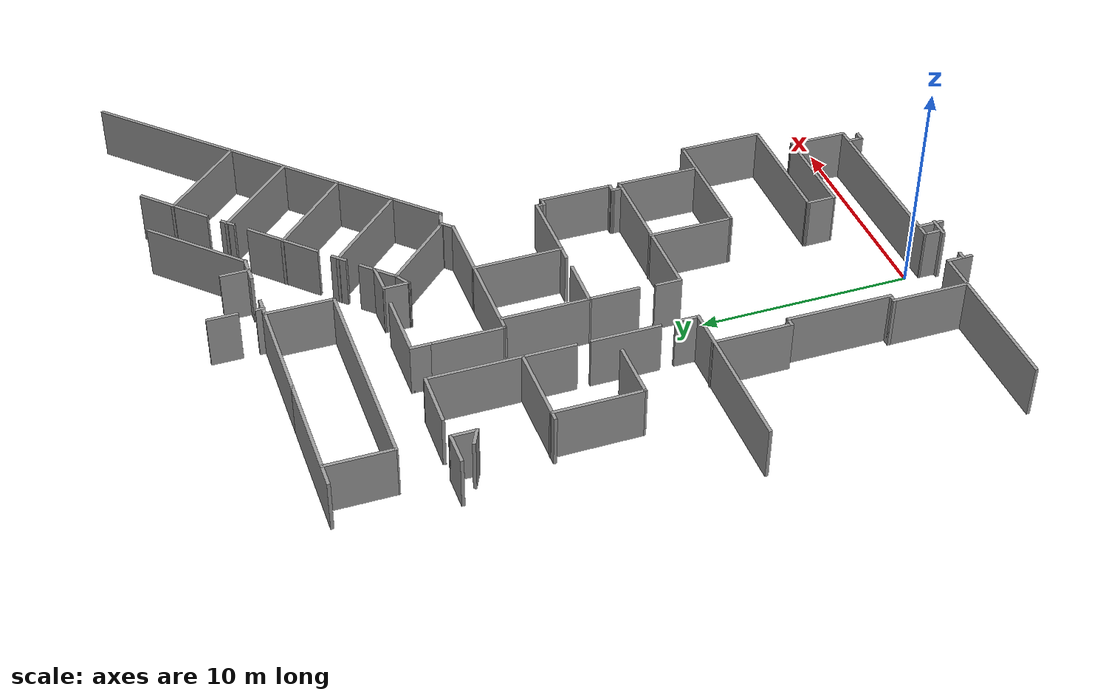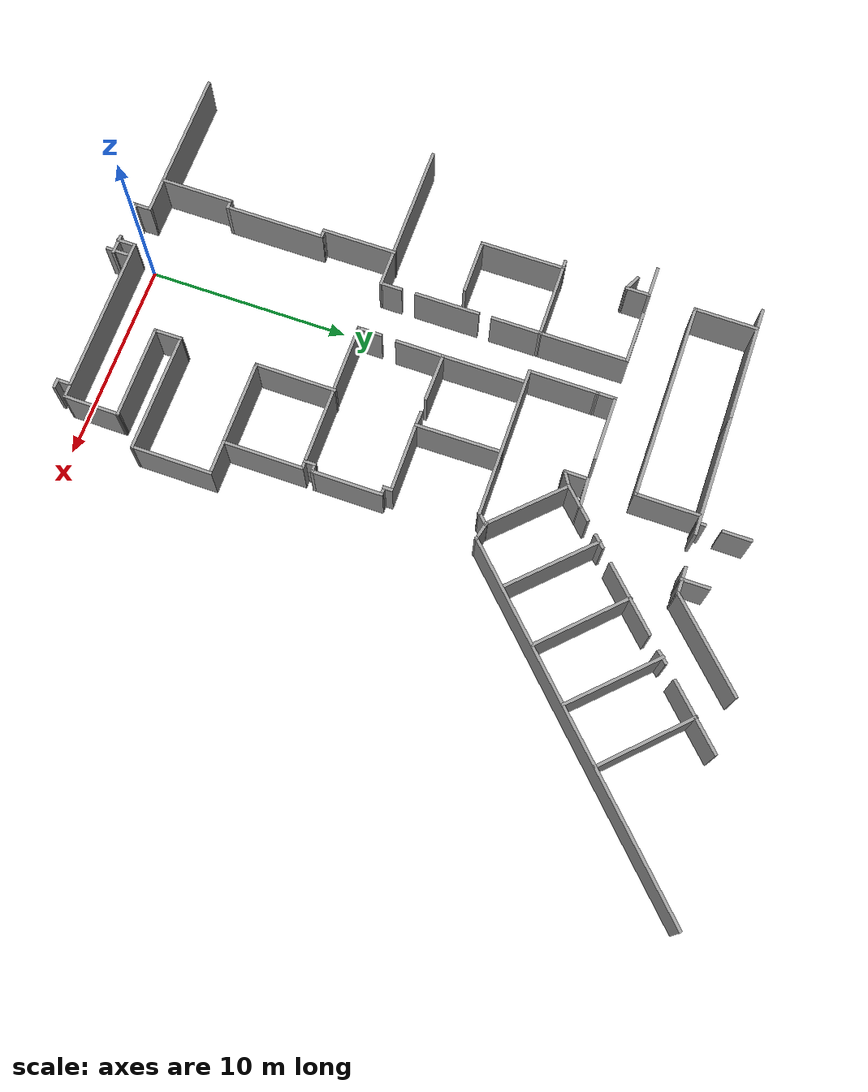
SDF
<sdf version="1.7">
 <model name="TI_1">
  <pose>-0.810812 4.85868 0 0 -0 0</pose>
  <link name="Wall_112">
   <collision name="Wall_112_Collision">
    <geometry><box><size>6 0.15 2.5</size></box></geometry>
    <pose>0 0 1.25 0 -0 0</pose>
   </collision>
   <visual name="Wall_112_Visual">
    <pose>0 0 1.25 0 -0 0</pose>
    <geometry><box><size>6 0.15 2.5</size></box></geometry>
    <material>
     <script><uri>file://media/materials/scripts/gazebo.material</uri><name>Gazebo/Grey</name></script>
     <ambient>1 1 1 1</ambient>
    </material>
    <meta><layer>0</layer></meta>
   </visual>
   <pose>-2.93233 23.8539 0 0 -0 3.14159</pose>
  </link>
  <link name="Wall_114">
   <collision name="Wall_114_Collision">
    <geometry><box><size>6 0.15 2.5</size></box></geometry>
    <pose>0 0 1.25 0 -0 0</pose>
   </collision>
   <visual name="Wall_114_Visual">
    <pose>0 0 1.25 0 -0 0</pose>
    <geometry><box><size>6 0.15 2.5</size></box></geometry>
    <material>
     <script><uri>file://media/materials/scripts/gazebo.material</uri><name>Gazebo/Grey</name></script>
     <ambient>1 1 1 1</ambient>
    </material>
    <meta><layer>0</layer></meta>
   </visual>
   <pose>2.91767 23.8539 0 0 -0 0</pose>
  </link>
  <link name="Wall_116">
   <collision name="Wall_116_Collision">
    <geometry><box><size>0.440225 0.15 2.5</size></box></geometry>
    <pose>0 0 1.25 0 -0 0</pose>
   </collision>
   <visual name="Wall_116_Visual">
    <pose>0 0 1.25 0 -0 0</pose>
    <geometry><box><size>0.440225 0.15 2.5</size></box></geometry>
    <material>
     <script><uri>file://media/materials/scripts/gazebo.material</uri><name>Gazebo/Grey</name></script>
     <ambient>1 1 1 1</ambient>
    </material>
    <meta><layer>0</layer></meta>
   </visual>
   <pose>5.32121 23.9754 0 0 -0 -1.5708</pose>
  </link>
  <link name="Wall_118">
   <collision name="Wall_118_Collision">
    <geometry><box><size>3.149 0.15 2.5</size></box></geometry>
    <pose>0 0 1.25 0 -0 0</pose>
   </collision>
   <visual name="Wall_118_Visual">
    <pose>0 0 1.25 0 -0 0</pose>
    <geometry><box><size>3.149 0.15 2.5</size></box></geometry>
    <material>
     <script><uri>file://media/materials/scripts/gazebo.material</uri><name>Gazebo/Grey</name></script>
     <ambient>1 1 1 1</ambient>
    </material>
    <meta><layer>0</layer></meta>
   </visual>
   <pose>4.94604 22.297 0 0 -0 -1.57373</pose>
  </link>
  <link name="Wall_119">
   <collision name="Wall_119_Collision">
    <geometry><box><size>9.93855 0.15 2.5</size></box></geometry>
    <pose>0 0 1.25 0 -0 0</pose>
   </collision>
   <visual name="Wall_119_Visual">
    <pose>0 0 1.25 0 -0 0</pose>
    <geometry><box><size>9.93855 0.15 2.5</size></box></geometry>
    <material>
     <script><uri>file://media/materials/scripts/gazebo.material</uri><name>Gazebo/Grey</name></script>
     <ambient>1 1 1 1</ambient>
    </material>
    <meta><layer>0</layer></meta>
   </visual>
   <pose>0.013612 20.8144 0 0 -0 3.13814</pose>
  </link>
  <link name="Wall_120">
   <collision name="Wall_120_Collision">
    <geometry><box><size>3.1578 0.15 2.5</size></box></geometry>
    <pose>0 0 1.25 0 -0 0</pose>
   </collision>
   <visual name="Wall_120_Visual">
    <pose>0 0 1.25 0 -0 0</pose>
    <geometry><box><size>3.1578 0.15 2.5</size></box></geometry>
    <material>
     <script><uri>file://media/materials/scripts/gazebo.material</uri><name>Gazebo/Grey</name></script>
     <ambient>1 1 1 1</ambient>
    </material>
    <meta><layer>0</layer></meta>
   </visual>
   <pose>-4.87624 22.3352 0 0 -0 1.56787</pose>
  </link>
  <link name="Wall_139">
   <collision name="Wall_139_Collision">
    <geometry><box><size>1.42714 0.15 2.5</size></box></geometry>
    <pose>0 0 1.25 0 -0 0</pose>
   </collision>
   <visual name="Wall_139_Visual">
    <pose>0 0 1.25 0 -0 0</pose>
    <geometry><box><size>1.42714 0.15 2.5</size></box></geometry>
    <material>
     <script><uri>file://media/materials/scripts/gazebo.material</uri><name>Gazebo/Grey</name></script>
     <ambient>1 1 1 1</ambient>
    </material>
    <meta><layer>0</layer></meta>
   </visual>
   <pose>5.33734 25.6312 0 0 -0 -1.5708</pose>
  </link>
  <link name="Wall_141">
   <collision name="Wall_141_Collision">
    <geometry><box><size>5.25 0.15 2.5</size></box></geometry>
    <pose>0 0 1.25 0 -0 0</pose>
   </collision>
   <visual name="Wall_141_Visual">
    <pose>0 0 1.25 0 -0 0</pose>
    <geometry><box><size>5.25 0.15 2.5</size></box></geometry>
    <material>
     <script><uri>file://media/materials/scripts/gazebo.material</uri><name>Gazebo/Grey</name></script>
     <ambient>1 1 1 1</ambient>
    </material>
    <meta><layer>0</layer></meta>
   </visual>
   <pose>10.5716 25.6654 0 0 -0 -2.35619</pose>
  </link>
  <link name="Wall_142">
   <collision name="Wall_142_Collision">
    <geometry><box><size>1.38634 0.15 2.5</size></box></geometry>
    <pose>0 0 1.25 0 -0 0</pose>
   </collision>
   <visual name="Wall_142_Visual">
    <pose>0 0 1.25 0 -0 0</pose>
    <geometry><box><size>1.38634 0.15 2.5</size></box></geometry>
    <material>
     <script><uri>file://media/materials/scripts/gazebo.material</uri><name>Gazebo/Grey</name></script>
     <ambient>1 1 1 1</ambient>
    </material>
    <meta><layer>0</layer></meta>
   </visual>
   <pose>8.15035 23.8615 0 0 -0 -3.14039</pose>
  </link>
  <link name="Wall_144">
   <collision name="Wall_144_Collision">
    <geometry><box><size>1.41185 0.15 2.5</size></box></geometry>
    <pose>0 0 1.25 0 -0 0</pose>
   </collision>
   <visual name="Wall_144_Visual">
    <pose>0 0 1.25 0 -0 0</pose>
    <geometry><box><size>1.41185 0.15 2.5</size></box></geometry>
    <material>
     <script><uri>file://media/materials/scripts/gazebo.material</uri><name>Gazebo/Grey</name></script>
     <ambient>1 1 1 1</ambient>
    </material>
    <meta><layer>0</layer></meta>
   </visual>
   <pose>8.09428 24.4611 0 0 -0 -1.56474</pose>
  </link>
  <link name="Wall_216">
   <collision name="Wall_216_Collision">
    <geometry><box><size>18.75 0.15 2.5</size></box></geometry>
    <pose>0 0 1.25 0 -0 0</pose>
   </collision>
   <visual name="Wall_216_Visual">
    <pose>0 0 1.25 0 -0 0</pose>
    <geometry><box><size>18.75 0.15 2.5</size></box></geometry>
    <material>
     <script><uri>file://media/materials/scripts/gazebo.material</uri><name>Gazebo/Grey</name></script>
     <ambient>1 1 1 1</ambient>
    </material>
    <meta><layer>0</layer></meta>
   </visual>
   <pose>15.8821 21.2558 0 0 -0 -2.35619</pose>
  </link>
  <link name="Wall_233">
   <collision name="Wall_233_Collision">
    <geometry><box><size>3.65505 0.15 2.5</size></box></geometry>
    <pose>0 0 1.25 0 -0 0</pose>
   </collision>
   <visual name="Wall_233_Visual">
    <pose>0 0 1.25 0 -0 0</pose>
    <geometry><box><size>3.65505 0.15 2.5</size></box></geometry>
    <material>
     <script><uri>file://media/materials/scripts/gazebo.material</uri><name>Gazebo/Grey</name></script>
     <ambient>1 1 1 1</ambient>
    </material>
    <meta><layer>0</layer></meta>
   </visual>
   <pose>13.8063 26.0507 0 0 -0 -2.35381</pose>
  </link>
  <link name="Wall_235">
   <collision name="Wall_235_Collision">
    <geometry><box><size>5.03533 0.15 2.5</size></box></geometry>
    <pose>0 0 1.25 0 -0 0</pose>
   </collision>
   <visual name="Wall_235_Visual">
    <pose>0 0 1.25 0 -0 0</pose>
    <geometry><box><size>5.03533 0.15 2.5</size></box></geometry>
    <material>
     <script><uri>file://media/materials/scripts/gazebo.material</uri><name>Gazebo/Grey</name></script>
     <ambient>1 1 1 1</ambient>
    </material>
    <meta><layer>0</layer></meta>
   </visual>
   <pose>15.5217 24.3531 0 0 -0 -0.788823</pose>
  </link>
  <link name="Wall_237">
   <collision name="Wall_237_Collision">
    <geometry><box><size>0.719083 0.15 2.5</size></box></geometry>
    <pose>0 0 1.25 0 -0 0</pose>
   </collision>
   <visual name="Wall_237_Visual">
    <pose>0 0 1.25 0 -0 0</pose>
    <geometry><box><size>0.719083 0.15 2.5</size></box></geometry>
    <material>
     <script><uri>file://media/materials/scripts/gazebo.material</uri><name>Gazebo/Grey</name></script>
     <ambient>1 1 1 1</ambient>
    </material>
    <meta><layer>0</layer></meta>
   </visual>
   <pose>11.7597 23.9981 0 0 -0 -2.32679</pose>
  </link>
  <link name="Wall_239">
   <collision name="Wall_239_Collision">
    <geometry><box><size>5.03542 0.15 2.5</size></box></geometry>
    <pose>0 0 1.25 0 -0 0</pose>
   </collision>
   <visual name="Wall_239_Visual">
    <pose>0 0 1.25 0 -0 0</pose>
    <geometry><box><size>5.03542 0.15 2.5</size></box></geometry>
    <material>
     <script><uri>file://media/materials/scripts/gazebo.material</uri><name>Gazebo/Grey</name></script>
     <ambient>1 1 1 1</ambient>
    </material>
    <meta><layer>0</layer></meta>
   </visual>
   <pose>13.4573 22.2887 0 0 -0 -0.792247</pose>
  </link>
  <link name="Wall_241">
   <collision name="Wall_241_Collision">
    <geometry><box><size>3.69687 0.15 2.5</size></box></geometry>
    <pose>0 0 1.25 0 -0 0</pose>
   </collision>
   <visual name="Wall_241_Visual">
    <pose>0 0 1.25 0 -0 0</pose>
    <geometry><box><size>3.69687 0.15 2.5</size></box></geometry>
    <material>
     <script><uri>file://media/materials/scripts/gazebo.material</uri><name>Gazebo/Grey</name></script>
     <ambient>1 1 1 1</ambient>
    </material>
    <meta><layer>0</layer></meta>
   </visual>
   <pose>9.70714 21.9338 0 0 -0 -2.35619</pose>
  </link>
  <link name="Wall_243">
   <collision name="Wall_243_Collision">
    <geometry><box><size>5.01022 0.15 2.5</size></box></geometry>
    <pose>0 0 1.25 0 -0 0</pose>
   </collision>
   <visual name="Wall_243_Visual">
    <pose>0 0 1.25 0 -0 0</pose>
    <geometry><box><size>5.01022 0.15 2.5</size></box></geometry>
    <material>
     <script><uri>file://media/materials/scripts/gazebo.material</uri><name>Gazebo/Grey</name></script>
     <ambient>1 1 1 1</ambient>
    </material>
    <meta><layer>0</layer></meta>
   </visual>
   <pose>11.3929 20.2184 0 0 -0 -0.783677</pose>
  </link>
  <link name="Wall_245">
   <collision name="Wall_245_Collision">
    <geometry><box><size>0.777449 0.15 2.5</size></box></geometry>
    <pose>0 0 1.25 0 -0 0</pose>
   </collision>
   <visual name="Wall_245_Visual">
    <pose>0 0 1.25 0 -0 0</pose>
    <geometry><box><size>0.777449 0.15 2.5</size></box></geometry>
    <material>
     <script><uri>file://media/materials/scripts/gazebo.material</uri><name>Gazebo/Grey</name></script>
     <ambient>1 1 1 1</ambient>
    </material>
    <meta><layer>0</layer></meta>
   </visual>
   <pose>7.63093 19.8871 0 0 -0 -2.34286</pose>
  </link>
  <link name="Wall_247">
   <collision name="Wall_247_Collision">
    <geometry><box><size>5.03533 0.15 2.5</size></box></geometry>
    <pose>0 0 1.25 0 -0 0</pose>
   </collision>
   <visual name="Wall_247_Visual">
    <pose>0 0 1.25 0 -0 0</pose>
    <geometry><box><size>5.03533 0.15 2.5</size></box></geometry>
    <material>
     <script><uri>file://media/materials/scripts/gazebo.material</uri><name>Gazebo/Grey</name></script>
     <ambient>1 1 1 1</ambient>
    </material>
    <meta><layer>0</layer></meta>
   </visual>
   <pose>9.34632 18.1777 0 0 -0 -0.788823</pose>
  </link>
  <link name="Wall_249">
   <collision name="Wall_249_Collision">
    <geometry><box><size>1.93881 0.15 2.5</size></box></geometry>
    <pose>0 0 1.25 0 -0 0</pose>
   </collision>
   <visual name="Wall_249_Visual">
    <pose>0 0 1.25 0 -0 0</pose>
    <geometry><box><size>1.93881 0.15 2.5</size></box></geometry>
    <material>
     <script><uri>file://media/materials/scripts/gazebo.material</uri><name>Gazebo/Grey</name></script>
     <ambient>1 1 1 1</ambient>
    </material>
    <meta><layer>0</layer></meta>
   </visual>
   <pose>6.20494 18.4653 0 0 -0 -2.35085</pose>
  </link>
  <link name="Wall_250">
   <collision name="Wall_250_Collision">
    <geometry><box><size>4.31119 0.15 2.5</size></box></geometry>
    <pose>0 0 1.25 0 -0 0</pose>
   </collision>
   <visual name="Wall_250_Visual">
    <pose>0 0 1.25 0 -0 0</pose>
    <geometry><box><size>4.31119 0.15 2.5</size></box></geometry>
    <material>
     <script><uri>file://media/materials/scripts/gazebo.material</uri><name>Gazebo/Grey</name></script>
     <ambient>1 1 1 1</ambient>
    </material>
    <meta><layer>0</layer></meta>
   </visual>
   <pose>7.03691 16.3482 0 0 -0 -0.792295</pose>
  </link>
  <link name="Wall_251">
   <collision name="Wall_251_Collision">
    <geometry><box><size>0.99666 0.15 2.5</size></box></geometry>
    <pose>0 0 1.25 0 -0 0</pose>
   </collision>
   <visual name="Wall_251_Visual">
    <pose>0 0 1.25 0 -0 0</pose>
    <geometry><box><size>0.99666 0.15 2.5</size></box></geometry>
    <material>
     <script><uri>file://media/materials/scripts/gazebo.material</uri><name>Gazebo/Grey</name></script>
     <ambient>1 1 1 1</ambient>
    </material>
    <meta><layer>0</layer></meta>
   </visual>
   <pose>8.91054 14.7722 0 0 -0 -0.225601</pose>
  </link>
  <link name="Wall_253">
   <collision name="Wall_253_Collision">
    <geometry><box><size>1.53127 0.15 2.5</size></box></geometry>
    <pose>0 0 1.25 0 -0 0</pose>
   </collision>
   <visual name="Wall_253_Visual">
    <pose>0 0 1.25 0 -0 0</pose>
    <geometry><box><size>1.53127 0.15 2.5</size></box></geometry>
    <material>
     <script><uri>file://media/materials/scripts/gazebo.material</uri><name>Gazebo/Grey</name></script>
     <ambient>1 1 1 1</ambient>
    </material>
    <meta><layer>0</layer></meta>
   </visual>
   <pose>5.65059 18.5726 0 0 -0 -3.11197</pose>
  </link>
  <link name="Wall_255">
   <collision name="Wall_255_Collision">
    <geometry><box><size>3.25 0.15 2.5</size></box></geometry>
    <pose>0 0 1.25 0 -0 0</pose>
   </collision>
   <visual name="Wall_255_Visual">
    <pose>0 0 1.25 0 -0 0</pose>
    <geometry><box><size>3.25 0.15 2.5</size></box></geometry>
    <material>
     <script><uri>file://media/materials/scripts/gazebo.material</uri><name>Gazebo/Grey</name></script>
     <ambient>1 1 1 1</ambient>
    </material>
    <meta><layer>0</layer></meta>
   </visual>
   <pose>2.31562 18.5726 0 0 -0 3.14159</pose>
  </link>
  <link name="Wall_256">
   <collision name="Wall_256_Collision">
    <geometry><box><size>1 0.15 2.5</size></box></geometry>
    <pose>0 0 1.25 0 -0 0</pose>
   </collision>
   <visual name="Wall_256_Visual">
    <pose>0 0 1.25 0 -0 0</pose>
    <geometry><box><size>1 0.15 2.5</size></box></geometry>
    <material>
     <script><uri>file://media/materials/scripts/gazebo.material</uri><name>Gazebo/Grey</name></script>
     <ambient>1 1 1 1</ambient>
    </material>
    <meta><layer>0</layer></meta>
   </visual>
   <pose>0.765617 18.1476 0 0 -0 -1.5708</pose>
  </link>
  <link name="Wall_259">
   <collision name="Wall_259_Collision">
    <geometry><box><size>3.45791 0.15 2.5</size></box></geometry>
    <pose>0 0 1.25 0 -0 0</pose>
   </collision>
   <visual name="Wall_259_Visual">
    <pose>0 0 1.25 0 -0 0</pose>
    <geometry><box><size>3.45791 0.15 2.5</size></box></geometry>
    <material>
     <script><uri>file://media/materials/scripts/gazebo.material</uri><name>Gazebo/Grey</name></script>
     <ambient>1 1 1 1</ambient>
    </material>
    <meta><layer>0</layer></meta>
   </visual>
   <pose>0.764368 16.0687 0 0 -0 -1.57155</pose>
  </link>
  <link name="Wall_260">
   <collision name="Wall_260_Collision">
    <geometry><box><size>7.51393 0.15 2.5</size></box></geometry>
    <pose>0 0 1.25 0 -0 0</pose>
   </collision>
   <visual name="Wall_260_Visual">
    <pose>0 0 1.25 0 -0 0</pose>
    <geometry><box><size>7.51393 0.15 2.5</size></box></geometry>
    <material>
     <script><uri>file://media/materials/scripts/gazebo.material</uri><name>Gazebo/Grey</name></script>
     <ambient>1 1 1 1</ambient>
    </material>
    <meta><layer>0</layer></meta>
   </visual>
   <pose>4.44508 14.4207 0 0 -0 0.001597</pose>
  </link>
  <link name="Wall_261">
   <collision name="Wall_261_Collision">
    <geometry><box><size>0.732261 0.15 2.5</size></box></geometry>
    <pose>0 0 1.25 0 -0 0</pose>
   </collision>
   <visual name="Wall_261_Visual">
    <pose>0 0 1.25 0 -0 0</pose>
    <geometry><box><size>0.732261 0.15 2.5</size></box></geometry>
    <material>
     <script><uri>file://media/materials/scripts/gazebo.material</uri><name>Gazebo/Grey</name></script>
     <ambient>1 1 1 1</ambient>
    </material>
    <meta><layer>0</layer></meta>
   </visual>
   <pose>8.3329 14.6325 0 0 -0 0.785398</pose>
  </link>
  <link name="Wall_263">
   <collision name="Wall_263_Collision">
    <geometry><box><size>4.19083 0.15 2.5</size></box></geometry>
    <pose>0 0 1.25 0 -0 0</pose>
   </collision>
   <visual name="Wall_263_Visual">
    <pose>0 0 1.25 0 -0 0</pose>
    <geometry><box><size>4.19083 0.15 2.5</size></box></geometry>
    <material>
     <script><uri>file://media/materials/scripts/gazebo.material</uri><name>Gazebo/Grey</name></script>
     <ambient>1 1 1 1</ambient>
    </material>
    <meta><layer>0</layer></meta>
   </visual>
   <pose>1.35958 12.3842 0 0 -0 -1.56406</pose>
  </link>
  <link name="Wall_264">
   <collision name="Wall_264_Collision">
    <geometry><box><size>2.43597 0.15 2.5</size></box></geometry>
    <pose>0 0 1.25 0 -0 0</pose>
   </collision>
   <visual name="Wall_264_Visual">
    <pose>0 0 1.25 0 -0 0</pose>
    <geometry><box><size>2.43597 0.15 2.5</size></box></geometry>
    <material>
     <script><uri>file://media/materials/scripts/gazebo.material</uri><name>Gazebo/Grey</name></script>
     <ambient>1 1 1 1</ambient>
    </material>
    <meta><layer>0</layer></meta>
   </visual>
   <pose>2.51599 10.3435 0 0 -0 -0.017855</pose>
  </link>
  <link name="Wall_266">
   <collision name="Wall_266_Collision">
    <geometry><box><size>4.25885 0.15 2.5</size></box></geometry>
    <pose>0 0 1.25 0 -0 0</pose>
   </collision>
   <visual name="Wall_266_Visual">
    <pose>0 0 1.25 0 -0 0</pose>
    <geometry><box><size>4.25885 0.15 2.5</size></box></geometry>
    <material>
     <script><uri>file://media/materials/scripts/gazebo.material</uri><name>Gazebo/Grey</name></script>
     <ambient>1 1 1 1</ambient>
    </material>
    <meta><layer>0</layer></meta>
   </visual>
   <pose>5.03968 12.3774 0 0 -0 -1.56086</pose>
  </link>
  <link name="Wall_267">
   <collision name="Wall_267_Collision">
    <geometry><box><size>0.803171 0.15 2.5</size></box></geometry>
    <pose>0 0 1.25 0 -0 0</pose>
   </collision>
   <visual name="Wall_267_Visual">
    <pose>0 0 1.25 0 -0 0</pose>
    <geometry><box><size>0.803171 0.15 2.5</size></box></geometry>
    <material>
     <script><uri>file://media/materials/scripts/gazebo.material</uri><name>Gazebo/Grey</name></script>
     <ambient>1 1 1 1</ambient>
    </material>
    <meta><layer>0</layer></meta>
   </visual>
   <pose>4.73357 10.3299 0 0 -0 3.12076</pose>
  </link>
  <link name="Wall_270">
   <collision name="Wall_270_Collision">
    <geometry><box><size>3.5 0.15 2.5</size></box></geometry>
    <pose>0 0 1.25 0 -0 0</pose>
   </collision>
   <visual name="Wall_270_Visual">
    <pose>0 0 1.25 0 -0 0</pose>
    <geometry><box><size>3.5 0.15 2.5</size></box></geometry>
    <material>
     <script><uri>file://media/materials/scripts/gazebo.material</uri><name>Gazebo/Grey</name></script>
     <ambient>1 1 1 1</ambient>
    </material>
    <meta><layer>0</layer></meta>
   </visual>
   <pose>6.73509 10.3231 0 0 -0 0</pose>
  </link>
  <link name="Wall_271">
   <collision name="Wall_271_Collision">
    <geometry><box><size>0.5 0.15 2.5</size></box></geometry>
    <pose>0 0 1.25 0 -0 0</pose>
   </collision>
   <visual name="Wall_271_Visual">
    <pose>0 0 1.25 0 -0 0</pose>
    <geometry><box><size>0.5 0.15 2.5</size></box></geometry>
    <material>
     <script><uri>file://media/materials/scripts/gazebo.material</uri><name>Gazebo/Grey</name></script>
     <ambient>1 1 1 1</ambient>
    </material>
    <meta><layer>0</layer></meta>
   </visual>
   <pose>8.41009 10.148 0 0 -0 -1.5708</pose>
  </link>
  <link name="Wall_272">
   <collision name="Wall_272_Collision">
    <geometry><box><size>0.5 0.15 2.5</size></box></geometry>
    <pose>0 0 1.25 0 -0 0</pose>
   </collision>
   <visual name="Wall_272_Visual">
    <pose>0 0 1.25 0 -0 0</pose>
    <geometry><box><size>0.5 0.15 2.5</size></box></geometry>
    <material>
     <script><uri>file://media/materials/scripts/gazebo.material</uri><name>Gazebo/Grey</name></script>
     <ambient>1 1 1 1</ambient>
    </material>
    <meta><layer>0</layer></meta>
   </visual>
   <pose>8.58509 9.97305 0 0 -0 0</pose>
  </link>
  <link name="Wall_273">
   <collision name="Wall_273_Collision">
    <geometry><box><size>3.5 0.15 2.5</size></box></geometry>
    <pose>0 0 1.25 0 -0 0</pose>
   </collision>
   <visual name="Wall_273_Visual">
    <pose>0 0 1.25 0 -0 0</pose>
    <geometry><box><size>3.5 0.15 2.5</size></box></geometry>
    <material>
     <script><uri>file://media/materials/scripts/gazebo.material</uri><name>Gazebo/Grey</name></script>
     <ambient>1 1 1 1</ambient>
    </material>
    <meta><layer>0</layer></meta>
   </visual>
   <pose>8.76009 8.29805 0 0 -0 -1.5708</pose>
  </link>
  <link name="Wall_274">
   <collision name="Wall_274_Collision">
    <geometry><box><size>0.5 0.15 2.5</size></box></geometry>
    <pose>0 0 1.25 0 -0 0</pose>
   </collision>
   <visual name="Wall_274_Visual">
    <pose>0 0 1.25 0 -0 0</pose>
    <geometry><box><size>0.5 0.15 2.5</size></box></geometry>
    <material>
     <script><uri>file://media/materials/scripts/gazebo.material</uri><name>Gazebo/Grey</name></script>
     <ambient>1 1 1 1</ambient>
    </material>
    <meta><layer>0</layer></meta>
   </visual>
   <pose>8.58509 6.62305 0 0 -0 3.14159</pose>
  </link>
  <link name="Wall_275">
   <collision name="Wall_275_Collision">
    <geometry><box><size>0.6221 0.15 2.5</size></box></geometry>
    <pose>0 0 1.25 0 -0 0</pose>
   </collision>
   <visual name="Wall_275_Visual">
    <pose>0 0 1.25 0 -0 0</pose>
    <geometry><box><size>0.6221 0.15 2.5</size></box></geometry>
    <material>
     <script><uri>file://media/materials/scripts/gazebo.material</uri><name>Gazebo/Grey</name></script>
     <ambient>1 1 1 1</ambient>
    </material>
    <meta><layer>0</layer></meta>
   </visual>
   <pose>8.41268 6.38701 0 0 -0 -1.5598</pose>
  </link>
  <link name="Wall_276">
   <collision name="Wall_276_Collision">
    <geometry><box><size>7.25 0.15 2.5</size></box></geometry>
    <pose>0 0 1.25 0 -0 0</pose>
   </collision>
   <visual name="Wall_276_Visual">
    <pose>0 0 1.25 0 -0 0</pose>
    <geometry><box><size>7.25 0.15 2.5</size></box></geometry>
    <material>
     <script><uri>file://media/materials/scripts/gazebo.material</uri><name>Gazebo/Grey</name></script>
     <ambient>1 1 1 1</ambient>
    </material>
    <meta><layer>0</layer></meta>
   </visual>
   <pose>4.86528 6.15098 0 0 -0 3.14159</pose>
  </link>
  <link name="Wall_277">
   <collision name="Wall_277_Collision">
    <geometry><box><size>1.25 0.15 2.5</size></box></geometry>
    <pose>0 0 1.25 0 -0 0</pose>
   </collision>
   <visual name="Wall_277_Visual">
    <pose>0 0 1.25 0 -0 0</pose>
    <geometry><box><size>1.25 0.15 2.5</size></box></geometry>
    <material>
     <script><uri>file://media/materials/scripts/gazebo.material</uri><name>Gazebo/Grey</name></script>
     <ambient>1 1 1 1</ambient>
    </material>
    <meta><layer>0</layer></meta>
   </visual>
   <pose>1.31528 6.70098 0 0 -0 1.5708</pose>
  </link>
  <link name="Wall_279">
   <collision name="Wall_279_Collision">
    <geometry><box><size>2.41741 0.15 2.5</size></box></geometry>
    <pose>0 0 1.25 0 -0 0</pose>
   </collision>
   <visual name="Wall_279_Visual">
    <pose>0 0 1.25 0 -0 0</pose>
    <geometry><box><size>2.41741 0.15 2.5</size></box></geometry>
    <material>
     <script><uri>file://media/materials/scripts/gazebo.material</uri><name>Gazebo/Grey</name></script>
     <ambient>1 1 1 1</ambient>
    </material>
    <meta><layer>0</layer></meta>
   </visual>
   <pose>1.37059 9.23016 0 0 -0 -1.57309</pose>
  </link>
  <link name="Wall_339">
   <collision name="Wall_339_Collision">
    <geometry><box><size>1.594 0.15 2.5</size></box></geometry>
    <pose>0 0 1.25 0 -0 0</pose>
   </collision>
   <visual name="Wall_339_Visual">
    <pose>0 0 1.25 0 -0 0</pose>
    <geometry><box><size>1.594 0.15 2.5</size></box></geometry>
    <material>
     <script><uri>file://media/materials/scripts/gazebo.material</uri><name>Gazebo/Grey</name></script>
     <ambient>1 1 1 1</ambient>
    </material>
    <meta><layer>0</layer></meta>
   </visual>
   <pose>-5.60719 18.563 0 0 -0 0</pose>
  </link>
  <link name="Wall_341">
   <collision name="Wall_341_Collision">
    <geometry><box><size>2.68655 0.15 2.5</size></box></geometry>
    <pose>0 0 1.25 0 -0 0</pose>
   </collision>
   <visual name="Wall_341_Visual">
    <pose>0 0 1.25 0 -0 0</pose>
    <geometry><box><size>2.68655 0.15 2.5</size></box></geometry>
    <material>
     <script><uri>file://media/materials/scripts/gazebo.material</uri><name>Gazebo/Grey</name></script>
     <ambient>1 1 1 1</ambient>
    </material>
    <meta><layer>0</layer></meta>
   </visual>
   <pose>-2.55815 18.5591 0 0 -0 -0.012548</pose>
  </link>
  <link name="Wall_351">
   <collision name="Wall_351_Collision">
    <geometry><box><size>4.13282 0.15 2.5</size></box></geometry>
    <pose>0 0 1.25 0 -0 0</pose>
   </collision>
   <visual name="Wall_351_Visual">
    <pose>0 0 1.25 0 -0 0</pose>
    <geometry><box><size>4.13282 0.15 2.5</size></box></geometry>
    <material>
     <script><uri>file://media/materials/scripts/gazebo.material</uri><name>Gazebo/Grey</name></script>
     <ambient>1 1 1 1</ambient>
    </material>
    <meta><layer>0</layer></meta>
   </visual>
   <pose>-3.2585 14.2856 0 0 -0 0.005194</pose>
  </link>
  <link name="Wall_352">
   <collision name="Wall_352_Collision">
    <geometry><box><size>4.39718 0.15 2.5</size></box></geometry>
    <pose>0 0 1.25 0 -0 0</pose>
   </collision>
   <visual name="Wall_352_Visual">
    <pose>0 0 1.25 0 -0 0</pose>
    <geometry><box><size>4.39718 0.15 2.5</size></box></geometry>
    <material>
     <script><uri>file://media/materials/scripts/gazebo.material</uri><name>Gazebo/Grey</name></script>
     <ambient>1 1 1 1</ambient>
    </material>
    <meta><layer>0</layer></meta>
   </visual>
   <pose>-1.27066 16.4196 0 0 -0 1.5724</pose>
  </link>
  <link name="Wall_354">
   <collision name="Wall_354_Collision">
    <geometry><box><size>2.5 0.15 2.5</size></box></geometry>
    <pose>0 0 1.25 0 -0 0</pose>
   </collision>
   <visual name="Wall_354_Visual">
    <pose>0 0 1.25 0 -0 0</pose>
    <geometry><box><size>2.5 0.15 2.5</size></box></geometry>
    <material>
     <script><uri>file://media/materials/scripts/gazebo.material</uri><name>Gazebo/Grey</name></script>
     <ambient>1 1 1 1</ambient>
    </material>
    <meta><layer>0</layer></meta>
   </visual>
   <pose>-1.26727 13.121 0 0 -0 -1.5708</pose>
  </link>
  <link name="Wall_356">
   <collision name="Wall_356_Collision">
    <geometry><box><size>4.22415 0.15 2.5</size></box></geometry>
    <pose>0 0 1.25 0 -0 0</pose>
   </collision>
   <visual name="Wall_356_Visual">
    <pose>0 0 1.25 0 -0 0</pose>
    <geometry><box><size>4.22415 0.15 2.5</size></box></geometry>
    <material>
     <script><uri>file://media/materials/scripts/gazebo.material</uri><name>Gazebo/Grey</name></script>
     <ambient>1 1 1 1</ambient>
    </material>
    <meta><layer>0</layer></meta>
   </visual>
   <pose>-4.8876 12.2591 0 0 -0 -1.56689</pose>
  </link>
  <link name="Wall_357">
   <collision name="Wall_357_Collision">
    <geometry><box><size>2.77593 0.15 2.5</size></box></geometry>
    <pose>0 0 1.25 0 -0 0</pose>
   </collision>
   <visual name="Wall_357_Visual">
    <pose>0 0 1.25 0 -0 0</pose>
    <geometry><box><size>2.77593 0.15 2.5</size></box></geometry>
    <material>
     <script><uri>file://media/materials/scripts/gazebo.material</uri><name>Gazebo/Grey</name></script>
     <ambient>1 1 1 1</ambient>
    </material>
    <meta><layer>0</layer></meta>
   </visual>
   <pose>-3.56677 10.2221 0 0 -0 0</pose>
  </link>
  <link name="Wall_359">
   <collision name="Wall_359_Collision">
    <geometry><box><size>3.22132 0.15 2.5</size></box></geometry>
    <pose>0 0 1.25 0 -0 0</pose>
   </collision>
   <visual name="Wall_359_Visual">
    <pose>0 0 1.25 0 -0 0</pose>
    <geometry><box><size>3.22132 0.15 2.5</size></box></geometry>
    <material>
     <script><uri>file://media/materials/scripts/gazebo.material</uri><name>Gazebo/Grey</name></script>
     <ambient>1 1 1 1</ambient>
    </material>
    <meta><layer>0</layer></meta>
   </visual>
   <pose>-1.26727 9.6731 0 0 -0 -1.5708</pose>
  </link>
  <link name="Wall_364">
   <collision name="Wall_364_Collision">
    <geometry><box><size>7.62831 0.15 2.5</size></box></geometry>
    <pose>0 0 1.25 0 -0 0</pose>
   </collision>
   <visual name="Wall_364_Visual">
    <pose>0 0 1.25 0 -0 0</pose>
    <geometry><box><size>7.62831 0.15 2.5</size></box></geometry>
    <material>
     <script><uri>file://media/materials/scripts/gazebo.material</uri><name>Gazebo/Grey</name></script>
     <ambient>1 1 1 1</ambient>
    </material>
    <meta><layer>0</layer></meta>
   </visual>
   <pose>-4.9905 6.36362 0 0 -0 -0.002272</pose>
  </link>
  <link name="Wall_365">
   <collision name="Wall_365_Collision">
    <geometry><box><size>1.13664 0.15 2.5</size></box></geometry>
    <pose>0 0 1.25 0 -0 0</pose>
   </collision>
   <visual name="Wall_365_Visual">
    <pose>0 0 1.25 0 -0 0</pose>
    <geometry><box><size>1.13664 0.15 2.5</size></box></geometry>
    <material>
     <script><uri>file://media/materials/scripts/gazebo.material</uri><name>Gazebo/Grey</name></script>
     <ambient>1 1 1 1</ambient>
    </material>
    <meta><layer>0</layer></meta>
   </visual>
   <pose>-1.25135 6.84845 0 0 -0 1.5708</pose>
  </link>
  <link name="Wall_367">
   <collision name="Wall_367_Collision">
    <geometry><box><size>3.75 0.15 2.5</size></box></geometry>
    <pose>0 0 1.25 0 -0 0</pose>
   </collision>
   <visual name="Wall_367_Visual">
    <pose>0 0 1.25 0 -0 0</pose>
    <geometry><box><size>3.75 0.15 2.5</size></box></geometry>
    <material>
     <script><uri>file://media/materials/scripts/gazebo.material</uri><name>Gazebo/Grey</name></script>
     <ambient>1 1 1 1</ambient>
    </material>
    <meta><layer>0</layer></meta>
   </visual>
   <pose>-3.01264 4.60041 0 0 -0 -1.5708</pose>
  </link>
  <link name="Wall_368">
   <collision name="Wall_368_Collision">
    <geometry><box><size>0.5 0.15 2.5</size></box></geometry>
    <pose>0 0 1.25 0 -0 0</pose>
   </collision>
   <visual name="Wall_368_Visual">
    <pose>0 0 1.25 0 -0 0</pose>
    <geometry><box><size>0.5 0.15 2.5</size></box></geometry>
    <material>
     <script><uri>file://media/materials/scripts/gazebo.material</uri><name>Gazebo/Grey</name></script>
     <ambient>1 1 1 1</ambient>
    </material>
    <meta><layer>0</layer></meta>
   </visual>
   <pose>-2.83764 2.80041 0 0 -0 0</pose>
  </link>
  <link name="Wall_369">
   <collision name="Wall_369_Collision">
    <geometry><box><size>5 0.15 2.5</size></box></geometry>
    <pose>0 0 1.25 0 -0 0</pose>
   </collision>
   <visual name="Wall_369_Visual">
    <pose>0 0 1.25 0 -0 0</pose>
    <geometry><box><size>5 0.15 2.5</size></box></geometry>
    <material>
     <script><uri>file://media/materials/scripts/gazebo.material</uri><name>Gazebo/Grey</name></script>
     <ambient>1 1 1 1</ambient>
    </material>
    <meta><layer>0</layer></meta>
   </visual>
   <pose>-2.66264 0.375411 0 0 -0 -1.5708</pose>
  </link>
  <link name="Wall_370">
   <collision name="Wall_370_Collision">
    <geometry><box><size>0.5 0.15 2.5</size></box></geometry>
    <pose>0 0 1.25 0 -0 0</pose>
   </collision>
   <visual name="Wall_370_Visual">
    <pose>0 0 1.25 0 -0 0</pose>
    <geometry><box><size>0.5 0.15 2.5</size></box></geometry>
    <material>
     <script><uri>file://media/materials/scripts/gazebo.material</uri><name>Gazebo/Grey</name></script>
     <ambient>1 1 1 1</ambient>
    </material>
    <meta><layer>0</layer></meta>
   </visual>
   <pose>-2.83764 -2.04959 0 0 -0 3.14159</pose>
  </link>
  <link name="Wall_371">
   <collision name="Wall_371_Collision">
    <geometry><box><size>3.61248 0.15 2.5</size></box></geometry>
    <pose>0 0 1.25 0 -0 0</pose>
   </collision>
   <visual name="Wall_371_Visual">
    <pose>0 0 1.25 0 -0 0</pose>
    <geometry><box><size>3.61248 0.15 2.5</size></box></geometry>
    <material>
     <script><uri>file://media/materials/scripts/gazebo.material</uri><name>Gazebo/Grey</name></script>
     <ambient>1 1 1 1</ambient>
    </material>
    <meta><layer>0</layer></meta>
   </visual>
   <pose>-3.01264 -3.78083 0 0 -0 -1.5708</pose>
  </link>
  <link name="Wall_375">
   <collision name="Wall_375_Collision">
    <geometry><box><size>0.5 0.15 2.5</size></box></geometry>
    <pose>0 0 1.25 0 -0 0</pose>
   </collision>
   <visual name="Wall_375_Visual">
    <pose>0 0 1.25 0 -0 0</pose>
    <geometry><box><size>0.5 0.15 2.5</size></box></geometry>
    <material>
     <script><uri>file://media/materials/scripts/gazebo.material</uri><name>Gazebo/Grey</name></script>
     <ambient>1 1 1 1</ambient>
    </material>
    <meta><layer>0</layer></meta>
   </visual>
   <pose>8.59028 6.15098 0 0 -0 0</pose>
  </link>
  <link name="Wall_376">
   <collision name="Wall_376_Collision">
    <geometry><box><size>4 0.15 2.5</size></box></geometry>
    <pose>0 0 1.25 0 -0 0</pose>
   </collision>
   <visual name="Wall_376_Visual">
    <pose>0 0 1.25 0 -0 0</pose>
    <geometry><box><size>4 0.15 2.5</size></box></geometry>
    <material>
     <script><uri>file://media/materials/scripts/gazebo.material</uri><name>Gazebo/Grey</name></script>
     <ambient>1 1 1 1</ambient>
    </material>
    <meta><layer>0</layer></meta>
   </visual>
   <pose>8.76528 4.22598 0 0 -0 -1.5708</pose>
  </link>
  <link name="Wall_377">
   <collision name="Wall_377_Collision">
    <geometry><box><size>4.25 0.15 2.5</size></box></geometry>
    <pose>0 0 1.25 0 -0 0</pose>
   </collision>
   <visual name="Wall_377_Visual">
    <pose>0 0 1.25 0 -0 0</pose>
    <geometry><box><size>4.25 0.15 2.5</size></box></geometry>
    <material>
     <script><uri>file://media/materials/scripts/gazebo.material</uri><name>Gazebo/Grey</name></script>
     <ambient>1 1 1 1</ambient>
    </material>
    <meta><layer>0</layer></meta>
   </visual>
   <pose>6.71528 2.30098 0 0 -0 3.14159</pose>
  </link>
  <link name="Wall_378">
   <collision name="Wall_378_Collision">
    <geometry><box><size>4.04115 0.15 2.5</size></box></geometry>
    <pose>0 0 1.25 0 -0 0</pose>
   </collision>
   <visual name="Wall_378_Visual">
    <pose>0 0 1.25 0 -0 0</pose>
    <geometry><box><size>4.04115 0.15 2.5</size></box></geometry>
    <material>
     <script><uri>file://media/materials/scripts/gazebo.material</uri><name>Gazebo/Grey</name></script>
     <ambient>1 1 1 1</ambient>
    </material>
    <meta><layer>0</layer></meta>
   </visual>
   <pose>4.6703 4.24655 0 0 -0 1.56821</pose>
  </link>
  <link name="Wall_380">
   <collision name="Wall_380_Collision">
    <geometry><box><size>1.75 0.15 2.5</size></box></geometry>
    <pose>0 0 1.25 0 -0 0</pose>
   </collision>
   <visual name="Wall_380_Visual">
    <pose>0 0 1.25 0 -0 0</pose>
    <geometry><box><size>1.75 0.15 2.5</size></box></geometry>
    <material>
     <script><uri>file://media/materials/scripts/gazebo.material</uri><name>Gazebo/Grey</name></script>
     <ambient>1 1 1 1</ambient>
    </material>
    <meta><layer>0</layer></meta>
   </visual>
   <pose>9.56528 2.30098 0 0 -0 0</pose>
  </link>
  <link name="Wall_381">
   <collision name="Wall_381_Collision">
    <geometry><box><size>4 0.15 2.5</size></box></geometry>
    <pose>0 0 1.25 0 -0 0</pose>
   </collision>
   <visual name="Wall_381_Visual">
    <pose>0 0 1.25 0 -0 0</pose>
    <geometry><box><size>4 0.15 2.5</size></box></geometry>
    <material>
     <script><uri>file://media/materials/scripts/gazebo.material</uri><name>Gazebo/Grey</name></script>
     <ambient>1 1 1 1</ambient>
    </material>
    <meta><layer>0</layer></meta>
   </visual>
   <pose>10.3653 0.375978 0 0 -0 -1.5708</pose>
  </link>
  <link name="Wall_383">
   <collision name="Wall_383_Collision">
    <geometry><box><size>5.92045 0.15 2.5</size></box></geometry>
    <pose>0 0 1.25 0 -0 0</pose>
   </collision>
   <visual name="Wall_383_Visual">
    <pose>0 0 1.25 0 -0 0</pose>
    <geometry><box><size>5.92045 0.15 2.5</size></box></geometry>
    <material>
     <script><uri>file://media/materials/scripts/gazebo.material</uri><name>Gazebo/Grey</name></script>
     <ambient>1 1 1 1</ambient>
    </material>
    <meta><layer>0</layer></meta>
   </visual>
   <pose>7.48006 -1.54205 0 0 -0 3.13917</pose>
  </link>
  <link name="Wall_384">
   <collision name="Wall_384_Collision">
    <geometry><box><size>1.437 0.15 2.5</size></box></geometry>
    <pose>0 0 1.25 0 -0 0</pose>
   </collision>
   <visual name="Wall_384_Visual">
    <pose>0 0 1.25 0 -0 0</pose>
    <geometry><box><size>1.437 0.15 2.5</size></box></geometry>
    <material>
     <script><uri>file://media/materials/scripts/gazebo.material</uri><name>Gazebo/Grey</name></script>
     <ambient>1 1 1 1</ambient>
    </material>
    <meta><layer>0</layer></meta>
   </visual>
   <pose>4.60177 -2.17853 0 0 -0 -1.56004</pose>
  </link>
  <link name="Wall_385">
   <collision name="Wall_385_Collision">
    <geometry><box><size>4.64733 0.15 2.5</size></box></geometry>
    <pose>0 0 1.25 0 -0 0</pose>
   </collision>
   <visual name="Wall_385_Visual">
    <pose>0 0 1.25 0 -0 0</pose>
    <geometry><box><size>4.64733 0.15 2.5</size></box></geometry>
    <material>
     <script><uri>file://media/materials/scripts/gazebo.material</uri><name>Gazebo/Grey</name></script>
     <ambient>1 1 1 1</ambient>
    </material>
    <meta><layer>0</layer></meta>
   </visual>
   <pose>6.85734 -2.81507 0 0 -0 0.003077</pose>
  </link>
  <link name="Wall_386">
   <collision name="Wall_386_Collision">
    <geometry><box><size>2.80702 0.15 2.5</size></box></geometry>
    <pose>0 0 1.25 0 -0 0</pose>
   </collision>
   <visual name="Wall_386_Visual">
    <pose>0 0 1.25 0 -0 0</pose>
    <geometry><box><size>2.80702 0.15 2.5</size></box></geometry>
    <material>
     <script><uri>file://media/materials/scripts/gazebo.material</uri><name>Gazebo/Grey</name></script>
     <ambient>1 1 1 1</ambient>
    </material>
    <meta><layer>0</layer></meta>
   </visual>
   <pose>9.09907 -4.13659 0 0 -0 -1.57601</pose>
  </link>
  <link name="Wall_387">
   <collision name="Wall_387_Collision">
    <geometry><box><size>8.48069 0.15 2.5</size></box></geometry>
    <pose>0 0 1.25 0 -0 0</pose>
   </collision>
   <visual name="Wall_387_Visual">
    <pose>0 0 1.25 0 -0 0</pose>
    <geometry><box><size>8.48069 0.15 2.5</size></box></geometry>
    <material>
     <script><uri>file://media/materials/scripts/gazebo.material</uri><name>Gazebo/Grey</name></script>
     <ambient>1 1 1 1</ambient>
    </material>
    <meta><layer>0</layer></meta>
   </visual>
   <pose>4.92696 -5.4927 0 0 -0 -3.13495</pose>
  </link>
  <link name="Wall_389">
   <collision name="Wall_389_Collision">
    <geometry><box><size>7.75 0.15 2.5</size></box></geometry>
    <pose>0 0 1.25 0 -0 0</pose>
   </collision>
   <visual name="Wall_389_Visual">
    <pose>0 0 1.25 0 -0 0</pose>
    <geometry><box><size>7.75 0.15 2.5</size></box></geometry>
    <material>
     <script><uri>file://media/materials/scripts/gazebo.material</uri><name>Gazebo/Grey</name></script>
     <ambient>1 1 1 1</ambient>
    </material>
    <meta><layer>0</layer></meta>
   </visual>
   <pose>-5.11092 -5.58957 0 0 -0 0</pose>
  </link>
  <link name="Wall_390">
   <collision name="Wall_390_Collision">
    <geometry><box><size>1.25 0.15 2.5</size></box></geometry>
    <pose>0 0 1.25 0 -0 0</pose>
   </collision>
   <visual name="Wall_390_Visual">
    <pose>0 0 1.25 0 -0 0</pose>
    <geometry><box><size>1.25 0.15 2.5</size></box></geometry>
    <material>
     <script><uri>file://media/materials/scripts/gazebo.material</uri><name>Gazebo/Grey</name></script>
     <ambient>1 1 1 1</ambient>
    </material>
    <meta><layer>0</layer></meta>
   </visual>
   <pose>-1.31092 -6.13957 0 0 -0 -1.5708</pose>
  </link>
  <link name="Wall_392">
   <collision name="Wall_392_Collision">
    <geometry><box><size>1.25 0.15 2.5</size></box></geometry>
    <pose>0 0 1.25 0 -0 0</pose>
   </collision>
   <visual name="Wall_392_Visual">
    <pose>0 0 1.25 0 -0 0</pose>
    <geometry><box><size>1.25 0.15 2.5</size></box></geometry>
    <material>
     <script><uri>file://media/materials/scripts/gazebo.material</uri><name>Gazebo/Grey</name></script>
     <ambient>1 1 1 1</ambient>
    </material>
    <meta><layer>0</layer></meta>
   </visual>
   <pose>1.34295 -6.11189 0 0 -0 -1.5708</pose>
  </link>
  <link name="Wall_394">
   <collision name="Wall_394_Collision">
    <geometry><box><size>0.426757 0.15 2.5</size></box></geometry>
    <pose>0 0 1.25 0 -0 0</pose>
   </collision>
   <visual name="Wall_394_Visual">
    <pose>0 0 1.25 0 -0 0</pose>
    <geometry><box><size>0.426757 0.15 2.5</size></box></geometry>
    <material>
     <script><uri>file://media/materials/scripts/gazebo.material</uri><name>Gazebo/Grey</name></script>
     <ambient>1 1 1 1</ambient>
    </material>
    <meta><layer>0</layer></meta>
   </visual>
   <pose>-1.14787 -6.32297 0 0 -0 0</pose>
  </link>
  <link name="Wall_396">
   <collision name="Wall_396_Collision">
    <geometry><box><size>1 0.15 2.5</size></box></geometry>
    <pose>0 0 1.25 0 -0 0</pose>
   </collision>
   <visual name="Wall_396_Visual">
    <pose>0 0 1.25 0 -0 0</pose>
    <geometry><box><size>1 0.15 2.5</size></box></geometry>
    <material>
     <script><uri>file://media/materials/scripts/gazebo.material</uri><name>Gazebo/Grey</name></script>
     <ambient>1 1 1 1</ambient>
    </material>
    <meta><layer>0</layer></meta>
   </visual>
   <pose>0.995658 -6.32745 0 0 -0 3.14159</pose>
  </link>
  <link name="Wall_398">
   <collision name="Wall_398_Collision">
    <geometry><box><size>1 0.15 2.5</size></box></geometry>
    <pose>0 0 1.25 0 -0 0</pose>
   </collision>
   <visual name="Wall_398_Visual">
    <pose>0 0 1.25 0 -0 0</pose>
    <geometry><box><size>1 0.15 2.5</size></box></geometry>
    <material>
     <script><uri>file://media/materials/scripts/gazebo.material</uri><name>Gazebo/Grey</name></script>
     <ambient>1 1 1 1</ambient>
    </material>
    <meta><layer>0</layer></meta>
   </visual>
   <pose>0.761755 -5.94538 0 0 -0 -1.5708</pose>
  </link>
  <link name="Wall_410">
   <collision name="Wall_410_Collision">
    <geometry><box><size>0.75 0.15 2.5</size></box></geometry>
    <pose>0 0 1.25 0 -0 0</pose>
   </collision>
   <visual name="Wall_410_Visual">
    <pose>0 0 1.25 0 -0 0</pose>
    <geometry><box><size>0.75 0.15 2.5</size></box></geometry>
    <material>
     <script><uri>file://media/materials/scripts/gazebo.material</uri><name>Gazebo/Grey</name></script>
     <ambient>1 1 1 1</ambient>
    </material>
    <meta><layer>0</layer></meta>
   </visual>
   <pose>8.45471 -5.81478 0 0 -0 -1.5708</pose>
  </link>
  <link name="Wall_411">
   <collision name="Wall_411_Collision">
    <geometry><box><size>0.5 0.15 2.5</size></box></geometry>
    <pose>0 0 1.25 0 -0 0</pose>
   </collision>
   <visual name="Wall_411_Visual">
    <pose>0 0 1.25 0 -0 0</pose>
    <geometry><box><size>0.5 0.15 2.5</size></box></geometry>
    <material>
     <script><uri>file://media/materials/scripts/gazebo.material</uri><name>Gazebo/Grey</name></script>
     <ambient>1 1 1 1</ambient>
    </material>
    <meta><layer>0</layer></meta>
   </visual>
   <pose>8.62971 -6.11478 0 0 -0 0</pose>
  </link>
  <link name="Wall_662">
   <collision name="Wall_662_Collision">
    <geometry><box><size>1.25 0.15 2.5</size></box></geometry>
    <pose>0 0 1.25 0 -0 0</pose>
   </collision>
   <visual name="Wall_662_Visual">
    <pose>0 0 1.25 0 -0 0</pose>
    <geometry><box><size>1.25 0.15 2.5</size></box></geometry>
    <material>
     <script><uri>file://media/materials/scripts/gazebo.material</uri><name>Gazebo/Grey</name></script>
     <ambient>1 1 1 1</ambient>
    </material>
    <meta><layer>0</layer></meta>
   </visual>
   <pose>4.96013 18.0021 0 0 -0 -1.5708</pose>
  </link>
  <link name="Wall_663">
   <collision name="Wall_663_Collision">
    <geometry><box><size>0.872206 0.15 2.5</size></box></geometry>
    <pose>0 0 1.25 0 -0 0</pose>
   </collision>
   <visual name="Wall_663_Visual">
    <pose>0 0 1.25 0 -0 0</pose>
    <geometry><box><size>0.872206 0.15 2.5</size></box></geometry>
    <material>
     <script><uri>file://media/materials/scripts/gazebo.material</uri><name>Gazebo/Grey</name></script>
     <ambient>1 1 1 1</ambient>
    </material>
    <meta><layer>0</layer></meta>
   </visual>
   <pose>5.26801 17.6408 0 0 -0 0.549827</pose>
  </link>
  <link name="Wall_665">
   <collision name="Wall_665_Collision">
    <geometry><box><size>1.25 0.15 2.5</size></box></geometry>
    <pose>0 0 1.25 0 -0 0</pose>
   </collision>
   <visual name="Wall_665_Visual">
    <pose>0 0 1.25 0 -0 0</pose>
    <geometry><box><size>1.25 0.15 2.5</size></box></geometry>
    <material>
     <script><uri>file://media/materials/scripts/gazebo.material</uri><name>Gazebo/Grey</name></script>
     <ambient>1 1 1 1</ambient>
    </material>
    <meta><layer>0</layer></meta>
   </visual>
   <pose>-4.88522 18.013 0 0 -0 -1.5708</pose>
  </link>
  <link name="Wall_666">
   <collision name="Wall_666_Collision">
    <geometry><box><size>0.893231 0.15 2.5</size></box></geometry>
    <pose>0 0 1.25 0 -0 0</pose>
   </collision>
   <visual name="Wall_666_Visual">
    <pose>0 0 1.25 0 -0 0</pose>
    <geometry><box><size>0.893231 0.15 2.5</size></box></geometry>
    <material>
     <script><uri>file://media/materials/scripts/gazebo.material</uri><name>Gazebo/Grey</name></script>
     <ambient>1 1 1 1</ambient>
    </material>
    <meta><layer>0</layer></meta>
   </visual>
   <pose>-5.21929 17.6257 0 0 -0 2.68821</pose>
  </link>
  <static>1</static>
 </model>
</sdf>
